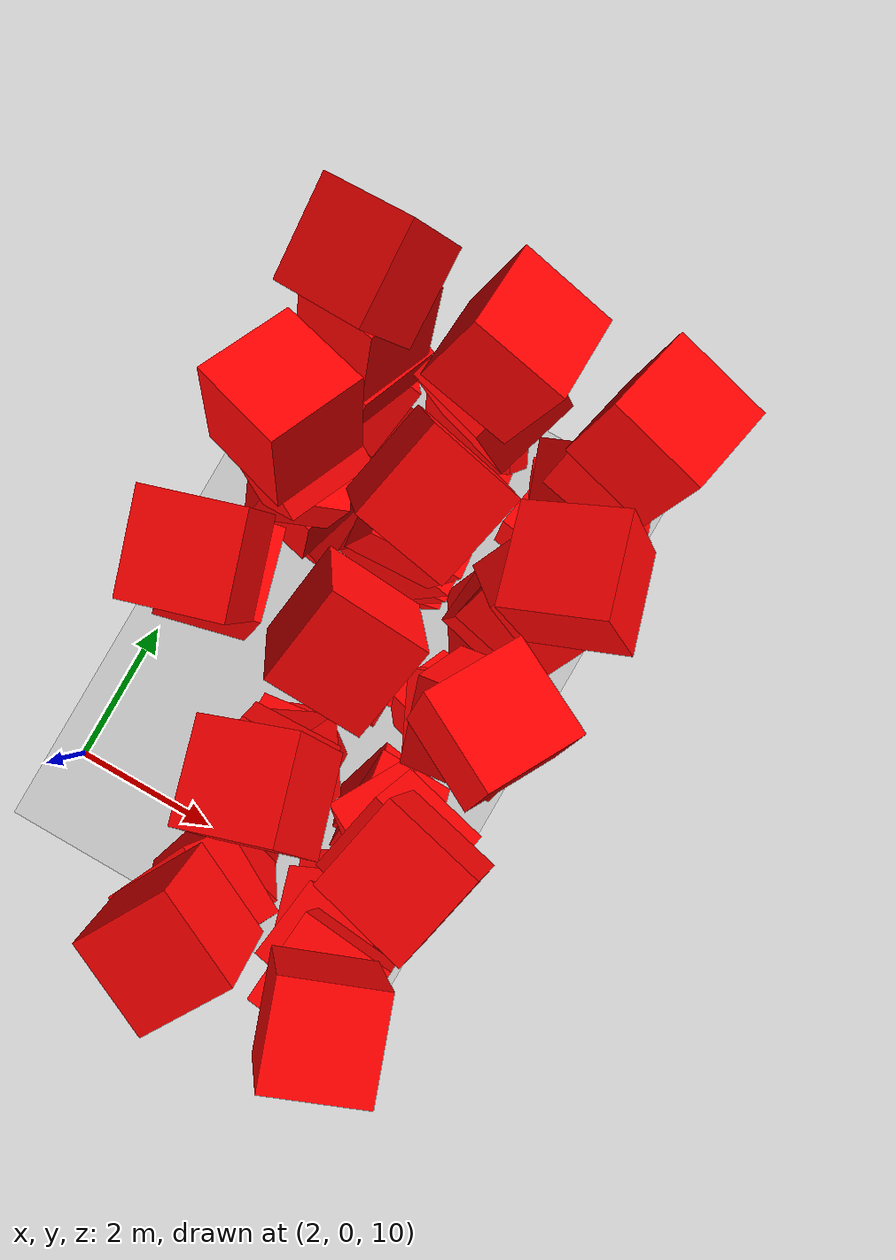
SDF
<sdf version="1.6">
 <world name="default">
  <model name="ground_plane">
   <pose>0 0 9  0 0 0</pose>
   <static>1</static>
   <link name="link">
    <collision name="collision">
     <geometry><plane><normal>0 0 1</normal><size>100 100</size></plane></geometry>
     <surface><bounce><restitution_coefficient>0</restitution_coefficient></bounce></surface>
    </collision>
    <visual name="visual">
     <geometry><plane><normal>0 0 1</normal><size>100 100</size></plane></geometry>
     <material>
      <ambient>0.8 0.8 0.8 1</ambient>
      <diffuse>0.8 0.8 0.8 1</diffuse>
      <specular>0.8 0.8 0.8 1</specular>
     </material>
    </visual>
   </link>
  </model>
  <model name="model_2_2_3">
   <pose>3 3 14.5 -0.198111 0.208371 0.246801</pose>
   <link name="box_link">
    <inertial>
     <inertia><ixx>1</ixx><ixy>0</ixy><ixz>0</ixz><iyy>1</iyy><iyz>0</iyz><izz>1</izz></inertia>
     <mass>6</mass>
    </inertial>
    <collision name="box_collision">
     <geometry><box><size>1 1 1</size></box></geometry>
     <surface><bounce><restitution_coefficient>0</restitution_coefficient></bounce></surface>
    </collision>
    <visual name="box_visual">
     <geometry><box><size>1 1 1</size></box></geometry>
     <material><ambient>1 0 0 1</ambient><diffuse>1 0 0 1</diffuse><specular>1 0 0 1</specular></material>
    </visual>
   </link>
  </model>
  <model name="model_2_2_4">
   <pose>3 3 16 0.117927 -0.129518 0.290726</pose>
   <link name="box_link">
    <inertial>
     <inertia><ixx>1</ixx><ixy>0</ixy><ixz>0</ixz><iyy>1</iyy><iyz>0</iyz><izz>1</izz></inertia>
     <mass>6</mass>
    </inertial>
    <collision name="box_collision">
     <geometry><box><size>1 1 1</size></box></geometry>
     <surface><bounce><restitution_coefficient>0</restitution_coefficient></bounce></surface>
    </collision>
    <visual name="box_visual">
     <geometry><box><size>1 1 1</size></box></geometry>
     <material><ambient>1 0 0 1</ambient><diffuse>1 0 0 1</diffuse><specular>1 0 0 1</specular></material>
    </visual>
   </link>
  </model>
  <model name="model_2_3_0">
   <pose>3 4.5 10 -0.025165 -0.414337 -0.152951</pose>
   <link name="box_link">
    <inertial>
     <inertia><ixx>1</ixx><ixy>0</ixy><ixz>0</ixz><iyy>1</iyy><iyz>0</iyz><izz>1</izz></inertia>
     <mass>6</mass>
    </inertial>
    <collision name="box_collision">
     <geometry><box><size>1 1 1</size></box></geometry>
     <surface><bounce><restitution_coefficient>0</restitution_coefficient></bounce></surface>
    </collision>
    <visual name="box_visual">
     <geometry><box><size>1 1 1</size></box></geometry>
     <material><ambient>1 0 0 1</ambient><diffuse>1 0 0 1</diffuse><specular>1 0 0 1</specular></material>
    </visual>
   </link>
  </model>
  <model name="model_2_3_1">
   <pose>3 4.5 11.5 -0.265623 -0.089924 -0.241491</pose>
   <link name="box_link">
    <inertial>
     <inertia><ixx>1</ixx><ixy>0</ixy><ixz>0</ixz><iyy>1</iyy><iyz>0</iyz><izz>1</izz></inertia>
     <mass>6</mass>
    </inertial>
    <collision name="box_collision">
     <geometry><box><size>1 1 1</size></box></geometry>
     <surface><bounce><restitution_coefficient>0</restitution_coefficient></bounce></surface>
    </collision>
    <visual name="box_visual">
     <geometry><box><size>1 1 1</size></box></geometry>
     <material><ambient>1 0 0 1</ambient><diffuse>1 0 0 1</diffuse><specular>1 0 0 1</specular></material>
    </visual>
   </link>
  </model>
  <model name="model_2_3_2">
   <pose>3 4.5 13 -0.090356 0.281294 0.422961</pose>
   <link name="box_link">
    <inertial>
     <inertia><ixx>1</ixx><ixy>0</ixy><ixz>0</ixz><iyy>1</iyy><iyz>0</iyz><izz>1</izz></inertia>
     <mass>6</mass>
    </inertial>
    <collision name="box_collision">
     <geometry><box><size>1 1 1</size></box></geometry>
     <surface><bounce><restitution_coefficient>0</restitution_coefficient></bounce></surface>
    </collision>
    <visual name="box_visual">
     <geometry><box><size>1 1 1</size></box></geometry>
     <material><ambient>1 0 0 1</ambient><diffuse>1 0 0 1</diffuse><specular>1 0 0 1</specular></material>
    </visual>
   </link>
  </model>
  <model name="model_2_3_3">
   <pose>3 4.5 14.5 -0.149042 0.477807 -0.477402</pose>
   <link name="box_link">
    <inertial>
     <inertia><ixx>1</ixx><ixy>0</ixy><ixz>0</ixz><iyy>1</iyy><iyz>0</iyz><izz>1</izz></inertia>
     <mass>6</mass>
    </inertial>
    <collision name="box_collision">
     <geometry><box><size>1 1 1</size></box></geometry>
     <surface><bounce><restitution_coefficient>0</restitution_coefficient></bounce></surface>
    </collision>
    <visual name="box_visual">
     <geometry><box><size>1 1 1</size></box></geometry>
     <material><ambient>1 0 0 1</ambient><diffuse>1 0 0 1</diffuse><specular>1 0 0 1</specular></material>
    </visual>
   </link>
  </model>
  <model name="model_2_3_4">
   <pose>3 4.5 16 -0.271486 -0.296293 -0.294881</pose>
   <link name="box_link">
    <inertial>
     <inertia><ixx>1</ixx><ixy>0</ixy><ixz>0</ixz><iyy>1</iyy><iyz>0</iyz><izz>1</izz></inertia>
     <mass>6</mass>
    </inertial>
    <collision name="box_collision">
     <geometry><box><size>1 1 1</size></box></geometry>
     <surface><bounce><restitution_coefficient>0</restitution_coefficient></bounce></surface>
    </collision>
    <visual name="box_visual">
     <geometry><box><size>1 1 1</size></box></geometry>
     <material><ambient>1 0 0 1</ambient><diffuse>1 0 0 1</diffuse><specular>1 0 0 1</specular></material>
    </visual>
   </link>
  </model>
  <model name="model_2_4_0">
   <pose>3 6 10 0.209347 -0.454872 -0.161305</pose>
   <link name="box_link">
    <inertial>
     <inertia><ixx>1</ixx><ixy>0</ixy><ixz>0</ixz><iyy>1</iyy><iyz>0</iyz><izz>1</izz></inertia>
     <mass>6</mass>
    </inertial>
    <collision name="box_collision">
     <geometry><box><size>1 1 1</size></box></geometry>
     <surface><bounce><restitution_coefficient>0</restitution_coefficient></bounce></surface>
    </collision>
    <visual name="box_visual">
     <geometry><box><size>1 1 1</size></box></geometry>
     <material><ambient>1 0 0 1</ambient><diffuse>1 0 0 1</diffuse><specular>1 0 0 1</specular></material>
    </visual>
   </link>
  </model>
  <model name="model_2_4_1">
   <pose>3 6 11.5 0.421568 0.2936 -0.053543</pose>
   <link name="box_link">
    <inertial>
     <inertia><ixx>1</ixx><ixy>0</ixy><ixz>0</ixz><iyy>1</iyy><iyz>0</iyz><izz>1</izz></inertia>
     <mass>6</mass>
    </inertial>
    <collision name="box_collision">
     <geometry><box><size>1 1 1</size></box></geometry>
     <surface><bounce><restitution_coefficient>0</restitution_coefficient></bounce></surface>
    </collision>
    <visual name="box_visual">
     <geometry><box><size>1 1 1</size></box></geometry>
     <material><ambient>1 0 0 1</ambient><diffuse>1 0 0 1</diffuse><specular>1 0 0 1</specular></material>
    </visual>
   </link>
  </model>
  <model name="model_2_4_2">
   <pose>3 6 13 -0.140526 0.038979 -0.362839</pose>
   <link name="box_link">
    <inertial>
     <inertia><ixx>1</ixx><ixy>0</ixy><ixz>0</ixz><iyy>1</iyy><iyz>0</iyz><izz>1</izz></inertia>
     <mass>6</mass>
    </inertial>
    <collision name="box_collision">
     <geometry><box><size>1 1 1</size></box></geometry>
     <surface><bounce><restitution_coefficient>0</restitution_coefficient></bounce></surface>
    </collision>
    <visual name="box_visual">
     <geometry><box><size>1 1 1</size></box></geometry>
     <material><ambient>1 0 0 1</ambient><diffuse>1 0 0 1</diffuse><specular>1 0 0 1</specular></material>
    </visual>
   </link>
  </model>
  <model name="model_2_4_3">
   <pose>3 6 14.5 -0.360287 -0.232538 -0.247077</pose>
   <link name="box_link">
    <inertial>
     <inertia><ixx>1</ixx><ixy>0</ixy><ixz>0</ixz><iyy>1</iyy><iyz>0</iyz><izz>1</izz></inertia>
     <mass>6</mass>
    </inertial>
    <collision name="box_collision">
     <geometry><box><size>1 1 1</size></box></geometry>
     <surface><bounce><restitution_coefficient>0</restitution_coefficient></bounce></surface>
    </collision>
    <visual name="box_visual">
     <geometry><box><size>1 1 1</size></box></geometry>
     <material><ambient>1 0 0 1</ambient><diffuse>1 0 0 1</diffuse><specular>1 0 0 1</specular></material>
    </visual>
   </link>
  </model>
  <model name="model_2_4_4">
   <pose>3 6 16 0.352831 -0.359817 -0.105282</pose>
   <link name="box_link">
    <inertial>
     <inertia><ixx>1</ixx><ixy>0</ixy><ixz>0</ixz><iyy>1</iyy><iyz>0</iyz><izz>1</izz></inertia>
     <mass>6</mass>
    </inertial>
    <collision name="box_collision">
     <geometry><box><size>1 1 1</size></box></geometry>
     <surface><bounce><restitution_coefficient>0</restitution_coefficient></bounce></surface>
    </collision>
    <visual name="box_visual">
     <geometry><box><size>1 1 1</size></box></geometry>
     <material><ambient>1 0 0 1</ambient><diffuse>1 0 0 1</diffuse><specular>1 0 0 1</specular></material>
    </visual>
   </link>
  </model>
  <model name="model_3_0_0">
   <pose>4.5 0 10 0.256834 -0.034594 0.128625</pose>
   <link name="box_link">
    <inertial>
     <inertia><ixx>1</ixx><ixy>0</ixy><ixz>0</ixz><iyy>1</iyy><iyz>0</iyz><izz>1</izz></inertia>
     <mass>6</mass>
    </inertial>
    <collision name="box_collision">
     <geometry><box><size>1 1 1</size></box></geometry>
     <surface><bounce><restitution_coefficient>0</restitution_coefficient></bounce></surface>
    </collision>
    <visual name="box_visual">
     <geometry><box><size>1 1 1</size></box></geometry>
     <material><ambient>1 0 0 1</ambient><diffuse>1 0 0 1</diffuse><specular>1 0 0 1</specular></material>
    </visual>
   </link>
  </model>
  <model name="model_3_0_1">
   <pose>4.5 0 11.5 -0.368741 -0.178572 0.320848</pose>
   <link name="box_link">
    <inertial>
     <inertia><ixx>1</ixx><ixy>0</ixy><ixz>0</ixz><iyy>1</iyy><iyz>0</iyz><izz>1</izz></inertia>
     <mass>6</mass>
    </inertial>
    <collision name="box_collision">
     <geometry><box><size>1 1 1</size></box></geometry>
     <surface><bounce><restitution_coefficient>0</restitution_coefficient></bounce></surface>
    </collision>
    <visual name="box_visual">
     <geometry><box><size>1 1 1</size></box></geometry>
     <material><ambient>1 0 0 1</ambient><diffuse>1 0 0 1</diffuse><specular>1 0 0 1</specular></material>
    </visual>
   </link>
  </model>
  <model name="model_3_0_2">
   <pose>4.5 0 13 0.134633 0.272501 -0.276824</pose>
   <link name="box_link">
    <inertial>
     <inertia><ixx>1</ixx><ixy>0</ixy><ixz>0</ixz><iyy>1</iyy><iyz>0</iyz><izz>1</izz></inertia>
     <mass>6</mass>
    </inertial>
    <collision name="box_collision">
     <geometry><box><size>1 1 1</size></box></geometry>
     <surface><bounce><restitution_coefficient>0</restitution_coefficient></bounce></surface>
    </collision>
    <visual name="box_visual">
     <geometry><box><size>1 1 1</size></box></geometry>
     <material><ambient>1 0 0 1</ambient><diffuse>1 0 0 1</diffuse><specular>1 0 0 1</specular></material>
    </visual>
   </link>
  </model>
  <model name="model_3_0_3">
   <pose>4.5 0 14.5 0.326208 -0.136151 -0.48375</pose>
   <link name="box_link">
    <inertial>
     <inertia><ixx>1</ixx><ixy>0</ixy><ixz>0</ixz><iyy>1</iyy><iyz>0</iyz><izz>1</izz></inertia>
     <mass>6</mass>
    </inertial>
    <collision name="box_collision">
     <geometry><box><size>1 1 1</size></box></geometry>
     <surface><bounce><restitution_coefficient>0</restitution_coefficient></bounce></surface>
    </collision>
    <visual name="box_visual">
     <geometry><box><size>1 1 1</size></box></geometry>
     <material><ambient>1 0 0 1</ambient><diffuse>1 0 0 1</diffuse><specular>1 0 0 1</specular></material>
    </visual>
   </link>
  </model>
  <model name="model_3_0_4">
   <pose>4.5 0 16 0.300434 0.129007 -0.460473</pose>
   <link name="box_link">
    <inertial>
     <inertia><ixx>1</ixx><ixy>0</ixy><ixz>0</ixz><iyy>1</iyy><iyz>0</iyz><izz>1</izz></inertia>
     <mass>6</mass>
    </inertial>
    <collision name="box_collision">
     <geometry><box><size>1 1 1</size></box></geometry>
     <surface><bounce><restitution_coefficient>0</restitution_coefficient></bounce></surface>
    </collision>
    <visual name="box_visual">
     <geometry><box><size>1 1 1</size></box></geometry>
     <material><ambient>1 0 0 1</ambient><diffuse>1 0 0 1</diffuse><specular>1 0 0 1</specular></material>
    </visual>
   </link>
  </model>
  <model name="model_3_1_0">
   <pose>4.5 1.5 10 0.366286 -0.060726 0.37611</pose>
   <link name="box_link">
    <inertial>
     <inertia><ixx>1</ixx><ixy>0</ixy><ixz>0</ixz><iyy>1</iyy><iyz>0</iyz><izz>1</izz></inertia>
     <mass>6</mass>
    </inertial>
    <collision name="box_collision">
     <geometry><box><size>1 1 1</size></box></geometry>
     <surface><bounce><restitution_coefficient>0</restitution_coefficient></bounce></surface>
    </collision>
    <visual name="box_visual">
     <geometry><box><size>1 1 1</size></box></geometry>
     <material><ambient>1 0 0 1</ambient><diffuse>1 0 0 1</diffuse><specular>1 0 0 1</specular></material>
    </visual>
   </link>
  </model>
  <model name="model_3_1_1">
   <pose>4.5 1.5 11.5 -0.365435 -0.353961 0.142329</pose>
   <link name="box_link">
    <inertial>
     <inertia><ixx>1</ixx><ixy>0</ixy><ixz>0</ixz><iyy>1</iyy><iyz>0</iyz><izz>1</izz></inertia>
     <mass>6</mass>
    </inertial>
    <collision name="box_collision">
     <geometry><box><size>1 1 1</size></box></geometry>
     <surface><bounce><restitution_coefficient>0</restitution_coefficient></bounce></surface>
    </collision>
    <visual name="box_visual">
     <geometry><box><size>1 1 1</size></box></geometry>
     <material><ambient>1 0 0 1</ambient><diffuse>1 0 0 1</diffuse><specular>1 0 0 1</specular></material>
    </visual>
   </link>
  </model>
  <model name="model_3_1_2">
   <pose>4.5 1.5 13 0.286396 -0.404559 0.466458</pose>
   <link name="box_link">
    <inertial>
     <inertia><ixx>1</ixx><ixy>0</ixy><ixz>0</ixz><iyy>1</iyy><iyz>0</iyz><izz>1</izz></inertia>
     <mass>6</mass>
    </inertial>
    <collision name="box_collision">
     <geometry><box><size>1 1 1</size></box></geometry>
     <surface><bounce><restitution_coefficient>0</restitution_coefficient></bounce></surface>
    </collision>
    <visual name="box_visual">
     <geometry><box><size>1 1 1</size></box></geometry>
     <material><ambient>1 0 0 1</ambient><diffuse>1 0 0 1</diffuse><specular>1 0 0 1</specular></material>
    </visual>
   </link>
  </model>
  <model name="model_3_1_3">
   <pose>4.5 1.5 14.5 0.13676 0.01454 0.038511</pose>
   <link name="box_link">
    <inertial>
     <inertia><ixx>1</ixx><ixy>0</ixy><ixz>0</ixz><iyy>1</iyy><iyz>0</iyz><izz>1</izz></inertia>
     <mass>6</mass>
    </inertial>
    <collision name="box_collision">
     <geometry><box><size>1 1 1</size></box></geometry>
     <surface><bounce><restitution_coefficient>0</restitution_coefficient></bounce></surface>
    </collision>
    <visual name="box_visual">
     <geometry><box><size>1 1 1</size></box></geometry>
     <material><ambient>1 0 0 1</ambient><diffuse>1 0 0 1</diffuse><specular>1 0 0 1</specular></material>
    </visual>
   </link>
  </model>
  <model name="model_3_1_4">
   <pose>4.5 1.5 16 -0.182151 -0.385042 0.36934</pose>
   <link name="box_link">
    <inertial>
     <inertia><ixx>1</ixx><ixy>0</ixy><ixz>0</ixz><iyy>1</iyy><iyz>0</iyz><izz>1</izz></inertia>
     <mass>6</mass>
    </inertial>
    <collision name="box_collision">
     <geometry><box><size>1 1 1</size></box></geometry>
     <surface><bounce><restitution_coefficient>0</restitution_coefficient></bounce></surface>
    </collision>
    <visual name="box_visual">
     <geometry><box><size>1 1 1</size></box></geometry>
     <material><ambient>1 0 0 1</ambient><diffuse>1 0 0 1</diffuse><specular>1 0 0 1</specular></material>
    </visual>
   </link>
  </model>
  <model name="model_3_2_0">
   <pose>4.5 3 10 0.348288 0.124407 0.003398</pose>
   <link name="box_link">
    <inertial>
     <inertia><ixx>1</ixx><ixy>0</ixy><ixz>0</ixz><iyy>1</iyy><iyz>0</iyz><izz>1</izz></inertia>
     <mass>6</mass>
    </inertial>
    <collision name="box_collision">
     <geometry><box><size>1 1 1</size></box></geometry>
     <surface><bounce><restitution_coefficient>0</restitution_coefficient></bounce></surface>
    </collision>
    <visual name="box_visual">
     <geometry><box><size>1 1 1</size></box></geometry>
     <material><ambient>1 0 0 1</ambient><diffuse>1 0 0 1</diffuse><specular>1 0 0 1</specular></material>
    </visual>
   </link>
  </model>
  <model name="model_3_2_1">
   <pose>4.5 3 11.5 -0.196137 -0.394392 0.280725</pose>
   <link name="box_link">
    <inertial>
     <inertia><ixx>1</ixx><ixy>0</ixy><ixz>0</ixz><iyy>1</iyy><iyz>0</iyz><izz>1</izz></inertia>
     <mass>6</mass>
    </inertial>
    <collision name="box_collision">
     <geometry><box><size>1 1 1</size></box></geometry>
     <surface><bounce><restitution_coefficient>0</restitution_coefficient></bounce></surface>
    </collision>
    <visual name="box_visual">
     <geometry><box><size>1 1 1</size></box></geometry>
     <material><ambient>1 0 0 1</ambient><diffuse>1 0 0 1</diffuse><specular>1 0 0 1</specular></material>
    </visual>
   </link>
  </model>
  <model name="model_3_2_2">
   <pose>4.5 3 13 0.119314 0.202347 0.386309</pose>
   <link name="box_link">
    <inertial>
     <inertia><ixx>1</ixx><ixy>0</ixy><ixz>0</ixz><iyy>1</iyy><iyz>0</iyz><izz>1</izz></inertia>
     <mass>6</mass>
    </inertial>
    <collision name="box_collision">
     <geometry><box><size>1 1 1</size></box></geometry>
     <surface><bounce><restitution_coefficient>0</restitution_coefficient></bounce></surface>
    </collision>
    <visual name="box_visual">
     <geometry><box><size>1 1 1</size></box></geometry>
     <material><ambient>1 0 0 1</ambient><diffuse>1 0 0 1</diffuse><specular>1 0 0 1</specular></material>
    </visual>
   </link>
  </model>
  <model name="model_3_2_3">
   <pose>4.5 3 14.5 -0.358587 -0.423911 0.12514</pose>
   <link name="box_link">
    <inertial>
     <inertia><ixx>1</ixx><ixy>0</ixy><ixz>0</ixz><iyy>1</iyy><iyz>0</iyz><izz>1</izz></inertia>
     <mass>6</mass>
    </inertial>
    <collision name="box_collision">
     <geometry><box><size>1 1 1</size></box></geometry>
     <surface><bounce><restitution_coefficient>0</restitution_coefficient></bounce></surface>
    </collision>
    <visual name="box_visual">
     <geometry><box><size>1 1 1</size></box></geometry>
     <material><ambient>1 0 0 1</ambient><diffuse>1 0 0 1</diffuse><specular>1 0 0 1</specular></material>
    </visual>
   </link>
  </model>
  <model name="model_3_2_4">
   <pose>4.5 3 16 0.392171 0.310731 -0.030338</pose>
   <link name="box_link">
    <inertial>
     <inertia><ixx>1</ixx><ixy>0</ixy><ixz>0</ixz><iyy>1</iyy><iyz>0</iyz><izz>1</izz></inertia>
     <mass>6</mass>
    </inertial>
    <collision name="box_collision">
     <geometry><box><size>1 1 1</size></box></geometry>
     <surface><bounce><restitution_coefficient>0</restitution_coefficient></bounce></surface>
    </collision>
    <visual name="box_visual">
     <geometry><box><size>1 1 1</size></box></geometry>
     <material><ambient>1 0 0 1</ambient><diffuse>1 0 0 1</diffuse><specular>1 0 0 1</specular></material>
    </visual>
   </link>
  </model>
  <model name="model_3_3_0">
   <pose>4.5 4.5 10 -0.031809 0.411893 0.243838</pose>
   <link name="box_link">
    <inertial>
     <inertia><ixx>1</ixx><ixy>0</ixy><ixz>0</ixz><iyy>1</iyy><iyz>0</iyz><izz>1</izz></inertia>
     <mass>6</mass>
    </inertial>
    <collision name="box_collision">
     <geometry><box><size>1 1 1</size></box></geometry>
     <surface><bounce><restitution_coefficient>0</restitution_coefficient></bounce></surface>
    </collision>
    <visual name="box_visual">
     <geometry><box><size>1 1 1</size></box></geometry>
     <material><ambient>1 0 0 1</ambient><diffuse>1 0 0 1</diffuse><specular>1 0 0 1</specular></material>
    </visual>
   </link>
  </model>
  <model name="model_3_3_1">
   <pose>4.5 4.5 11.5 -0.118548 0.415118 0.142056</pose>
   <link name="box_link">
    <inertial>
     <inertia><ixx>1</ixx><ixy>0</ixy><ixz>0</ixz><iyy>1</iyy><iyz>0</iyz><izz>1</izz></inertia>
     <mass>6</mass>
    </inertial>
    <collision name="box_collision">
     <geometry><box><size>1 1 1</size></box></geometry>
     <surface><bounce><restitution_coefficient>0</restitution_coefficient></bounce></surface>
    </collision>
    <visual name="box_visual">
     <geometry><box><size>1 1 1</size></box></geometry>
     <material><ambient>1 0 0 1</ambient><diffuse>1 0 0 1</diffuse><specular>1 0 0 1</specular></material>
    </visual>
   </link>
  </model>
  <model name="model_3_3_2">
   <pose>4.5 4.5 13 -0.287036 0.421215 -0.124086</pose>
   <link name="box_link">
    <inertial>
     <inertia><ixx>1</ixx><ixy>0</ixy><ixz>0</ixz><iyy>1</iyy><iyz>0</iyz><izz>1</izz></inertia>
     <mass>6</mass>
    </inertial>
    <collision name="box_collision">
     <geometry><box><size>1 1 1</size></box></geometry>
     <surface><bounce><restitution_coefficient>0</restitution_coefficient></bounce></surface>
    </collision>
    <visual name="box_visual">
     <geometry><box><size>1 1 1</size></box></geometry>
     <material><ambient>1 0 0 1</ambient><diffuse>1 0 0 1</diffuse><specular>1 0 0 1</specular></material>
    </visual>
   </link>
  </model>
  <model name="model_3_3_3">
   <pose>4.5 4.5 14.5 -0.126018 0.241975 0.079496</pose>
   <link name="box_link">
    <inertial>
     <inertia><ixx>1</ixx><ixy>0</ixy><ixz>0</ixz><iyy>1</iyy><iyz>0</iyz><izz>1</izz></inertia>
     <mass>6</mass>
    </inertial>
    <collision name="box_collision">
     <geometry><box><size>1 1 1</size></box></geometry>
     <surface><bounce><restitution_coefficient>0</restitution_coefficient></bounce></surface>
    </collision>
    <visual name="box_visual">
     <geometry><box><size>1 1 1</size></box></geometry>
     <material><ambient>1 0 0 1</ambient><diffuse>1 0 0 1</diffuse><specular>1 0 0 1</specular></material>
    </visual>
   </link>
  </model>
  <model name="model_3_3_4">
   <pose>4.5 4.5 16 0.25064 0.309336 -0.132233</pose>
   <link name="box_link">
    <inertial>
     <inertia><ixx>1</ixx><ixy>0</ixy><ixz>0</ixz><iyy>1</iyy><iyz>0</iyz><izz>1</izz></inertia>
     <mass>6</mass>
    </inertial>
    <collision name="box_collision">
     <geometry><box><size>1 1 1</size></box></geometry>
     <surface><bounce><restitution_coefficient>0</restitution_coefficient></bounce></surface>
    </collision>
    <visual name="box_visual">
     <geometry><box><size>1 1 1</size></box></geometry>
     <material><ambient>1 0 0 1</ambient><diffuse>1 0 0 1</diffuse><specular>1 0 0 1</specular></material>
    </visual>
   </link>
  </model>
  <model name="model_3_4_0">
   <pose>4.5 6 10 -0.369966 -0.384804 -0.313937</pose>
   <link name="box_link">
    <inertial>
     <inertia><ixx>1</ixx><ixy>0</ixy><ixz>0</ixz><iyy>1</iyy><iyz>0</iyz><izz>1</izz></inertia>
     <mass>6</mass>
    </inertial>
    <collision name="box_collision">
     <geometry><box><size>1 1 1</size></box></geometry>
     <surface><bounce><restitution_coefficient>0</restitution_coefficient></bounce></surface>
    </collision>
    <visual name="box_visual">
     <geometry><box><size>1 1 1</size></box></geometry>
     <material><ambient>1 0 0 1</ambient><diffuse>1 0 0 1</diffuse><specular>1 0 0 1</specular></material>
    </visual>
   </link>
  </model>
  <model name="model_3_4_1">
   <pose>4.5 6 11.5 0.012061 0.353673 0.142476</pose>
   <link name="box_link">
    <inertial>
     <inertia><ixx>1</ixx><ixy>0</ixy><ixz>0</ixz><iyy>1</iyy><iyz>0</iyz><izz>1</izz></inertia>
     <mass>6</mass>
    </inertial>
    <collision name="box_collision">
     <geometry><box><size>1 1 1</size></box></geometry>
     <surface><bounce><restitution_coefficient>0</restitution_coefficient></bounce></surface>
    </collision>
    <visual name="box_visual">
     <geometry><box><size>1 1 1</size></box></geometry>
     <material><ambient>1 0 0 1</ambient><diffuse>1 0 0 1</diffuse><specular>1 0 0 1</specular></material>
    </visual>
   </link>
  </model>
  <model name="model_3_4_2">
   <pose>4.5 6 13 0.287963 -0.308405 0.391526</pose>
   <link name="box_link">
    <inertial>
     <inertia><ixx>1</ixx><ixy>0</ixy><ixz>0</ixz><iyy>1</iyy><iyz>0</iyz><izz>1</izz></inertia>
     <mass>6</mass>
    </inertial>
    <collision name="box_collision">
     <geometry><box><size>1 1 1</size></box></geometry>
     <surface><bounce><restitution_coefficient>0</restitution_coefficient></bounce></surface>
    </collision>
    <visual name="box_visual">
     <geometry><box><size>1 1 1</size></box></geometry>
     <material><ambient>1 0 0 1</ambient><diffuse>1 0 0 1</diffuse><specular>1 0 0 1</specular></material>
    </visual>
   </link>
  </model>
  <model name="model_3_4_3">
   <pose>4.5 6 14.5 0.167026 -0.382644 -0.360348</pose>
   <link name="box_link">
    <inertial>
     <inertia><ixx>1</ixx><ixy>0</ixy><ixz>0</ixz><iyy>1</iyy><iyz>0</iyz><izz>1</izz></inertia>
     <mass>6</mass>
    </inertial>
    <collision name="box_collision">
     <geometry><box><size>1 1 1</size></box></geometry>
     <surface><bounce><restitution_coefficient>0</restitution_coefficient></bounce></surface>
    </collision>
    <visual name="box_visual">
     <geometry><box><size>1 1 1</size></box></geometry>
     <material><ambient>1 0 0 1</ambient><diffuse>1 0 0 1</diffuse><specular>1 0 0 1</specular></material>
    </visual>
   </link>
  </model>
  <model name="model_3_4_4">
   <pose>4.5 6 16 -0.399509 0.223433 -0.117832</pose>
   <link name="box_link">
    <inertial>
     <inertia><ixx>1</ixx><ixy>0</ixy><ixz>0</ixz><iyy>1</iyy><iyz>0</iyz><izz>1</izz></inertia>
     <mass>6</mass>
    </inertial>
    <collision name="box_collision">
     <geometry><box><size>1 1 1</size></box></geometry>
     <surface><bounce><restitution_coefficient>0</restitution_coefficient></bounce></surface>
    </collision>
    <visual name="box_visual">
     <geometry><box><size>1 1 1</size></box></geometry>
     <material><ambient>1 0 0 1</ambient><diffuse>1 0 0 1</diffuse><specular>1 0 0 1</specular></material>
    </visual>
   </link>
  </model>
  <model name="model_4_0_0">
   <pose>6 0 10 0.275329 0.034203 0.459849</pose>
   <link name="box_link">
    <inertial>
     <inertia><ixx>1</ixx><ixy>0</ixy><ixz>0</ixz><iyy>1</iyy><iyz>0</iyz><izz>1</izz></inertia>
     <mass>6</mass>
    </inertial>
    <collision name="box_collision">
     <geometry><box><size>1 1 1</size></box></geometry>
     <surface><bounce><restitution_coefficient>0</restitution_coefficient></bounce></surface>
    </collision>
    <visual name="box_visual">
     <geometry><box><size>1 1 1</size></box></geometry>
     <material><ambient>1 0 0 1</ambient><diffuse>1 0 0 1</diffuse><specular>1 0 0 1</specular></material>
    </visual>
   </link>
  </model>
  <model name="model_4_0_1">
   <pose>6 0 11.5 -0.479344 -0.384472 0.496045</pose>
   <link name="box_link">
    <inertial>
     <inertia><ixx>1</ixx><ixy>0</ixy><ixz>0</ixz><iyy>1</iyy><iyz>0</iyz><izz>1</izz></inertia>
     <mass>6</mass>
    </inertial>
    <collision name="box_collision">
     <geometry><box><size>1 1 1</size></box></geometry>
     <surface><bounce><restitution_coefficient>0</restitution_coefficient></bounce></surface>
    </collision>
    <visual name="box_visual">
     <geometry><box><size>1 1 1</size></box></geometry>
     <material><ambient>1 0 0 1</ambient><diffuse>1 0 0 1</diffuse><specular>1 0 0 1</specular></material>
    </visual>
   </link>
  </model>
  <model name="model_4_0_2">
   <pose>6 0 13 -0.059376 -0.336423 -0.107769</pose>
   <link name="box_link">
    <inertial>
     <inertia><ixx>1</ixx><ixy>0</ixy><ixz>0</ixz><iyy>1</iyy><iyz>0</iyz><izz>1</izz></inertia>
     <mass>6</mass>
    </inertial>
    <collision name="box_collision">
     <geometry><box><size>1 1 1</size></box></geometry>
     <surface><bounce><restitution_coefficient>0</restitution_coefficient></bounce></surface>
    </collision>
    <visual name="box_visual">
     <geometry><box><size>1 1 1</size></box></geometry>
     <material><ambient>1 0 0 1</ambient><diffuse>1 0 0 1</diffuse><specular>1 0 0 1</specular></material>
    </visual>
   </link>
  </model>
  <model name="model_4_0_3">
   <pose>6 0 14.5 -0.075613 -0.157664 -0.061889</pose>
   <link name="box_link">
    <inertial>
     <inertia><ixx>1</ixx><ixy>0</ixy><ixz>0</ixz><iyy>1</iyy><iyz>0</iyz><izz>1</izz></inertia>
     <mass>6</mass>
    </inertial>
    <collision name="box_collision">
     <geometry><box><size>1 1 1</size></box></geometry>
     <surface><bounce><restitution_coefficient>0</restitution_coefficient></bounce></surface>
    </collision>
    <visual name="box_visual">
     <geometry><box><size>1 1 1</size></box></geometry>
     <material><ambient>1 0 0 1</ambient><diffuse>1 0 0 1</diffuse><specular>1 0 0 1</specular></material>
    </visual>
   </link>
  </model>
  <model name="model_4_0_4">
   <pose>6 0 16 0.002587 0.11586 0.348491</pose>
   <link name="box_link">
    <inertial>
     <inertia><ixx>1</ixx><ixy>0</ixy><ixz>0</ixz><iyy>1</iyy><iyz>0</iyz><izz>1</izz></inertia>
     <mass>6</mass>
    </inertial>
    <collision name="box_collision">
     <geometry><box><size>1 1 1</size></box></geometry>
     <surface><bounce><restitution_coefficient>0</restitution_coefficient></bounce></surface>
    </collision>
    <visual name="box_visual">
     <geometry><box><size>1 1 1</size></box></geometry>
     <material><ambient>1 0 0 1</ambient><diffuse>1 0 0 1</diffuse><specular>1 0 0 1</specular></material>
    </visual>
   </link>
  </model>
  <model name="model_4_1_0">
   <pose>6 1.5 10 0.471153 0.248088 -0.14744</pose>
   <link name="box_link">
    <inertial>
     <inertia><ixx>1</ixx><ixy>0</ixy><ixz>0</ixz><iyy>1</iyy><iyz>0</iyz><izz>1</izz></inertia>
     <mass>6</mass>
    </inertial>
    <collision name="box_collision">
     <geometry><box><size>1 1 1</size></box></geometry>
     <surface><bounce><restitution_coefficient>0</restitution_coefficient></bounce></surface>
    </collision>
    <visual name="box_visual">
     <geometry><box><size>1 1 1</size></box></geometry>
     <material><ambient>1 0 0 1</ambient><diffuse>1 0 0 1</diffuse><specular>1 0 0 1</specular></material>
    </visual>
   </link>
  </model>
  <model name="model_4_1_1">
   <pose>6 1.5 11.5 0.480398 0.035775 -0.01633</pose>
   <link name="box_link">
    <inertial>
     <inertia><ixx>1</ixx><ixy>0</ixy><ixz>0</ixz><iyy>1</iyy><iyz>0</iyz><izz>1</izz></inertia>
     <mass>6</mass>
    </inertial>
    <collision name="box_collision">
     <geometry><box><size>1 1 1</size></box></geometry>
     <surface><bounce><restitution_coefficient>0</restitution_coefficient></bounce></surface>
    </collision>
    <visual name="box_visual">
     <geometry><box><size>1 1 1</size></box></geometry>
     <material><ambient>1 0 0 1</ambient><diffuse>1 0 0 1</diffuse><specular>1 0 0 1</specular></material>
    </visual>
   </link>
  </model>
  <model name="model_4_1_2">
   <pose>6 1.5 13 -0.136529 -0.444515 -0.456755</pose>
   <link name="box_link">
    <inertial>
     <inertia><ixx>1</ixx><ixy>0</ixy><ixz>0</ixz><iyy>1</iyy><iyz>0</iyz><izz>1</izz></inertia>
     <mass>6</mass>
    </inertial>
    <collision name="box_collision">
     <geometry><box><size>1 1 1</size></box></geometry>
     <surface><bounce><restitution_coefficient>0</restitution_coefficient></bounce></surface>
    </collision>
    <visual name="box_visual">
     <geometry><box><size>1 1 1</size></box></geometry>
     <material><ambient>1 0 0 1</ambient><diffuse>1 0 0 1</diffuse><specular>1 0 0 1</specular></material>
    </visual>
   </link>
  </model>
  <model name="model_4_1_3">
   <pose>6 1.5 14.5 0.419368 -0.14412 -0.233303</pose>
   <link name="box_link">
    <inertial>
     <inertia><ixx>1</ixx><ixy>0</ixy><ixz>0</ixz><iyy>1</iyy><iyz>0</iyz><izz>1</izz></inertia>
     <mass>6</mass>
    </inertial>
    <collision name="box_collision">
     <geometry><box><size>1 1 1</size></box></geometry>
     <surface><bounce><restitution_coefficient>0</restitution_coefficient></bounce></surface>
    </collision>
    <visual name="box_visual">
     <geometry><box><size>1 1 1</size></box></geometry>
     <material><ambient>1 0 0 1</ambient><diffuse>1 0 0 1</diffuse><specular>1 0 0 1</specular></material>
    </visual>
   </link>
  </model>
  <model name="model_4_1_4">
   <pose>6 1.5 16 0.15551 -0.198368 -0.217078</pose>
   <link name="box_link">
    <inertial>
     <inertia><ixx>1</ixx><ixy>0</ixy><ixz>0</ixz><iyy>1</iyy><iyz>0</iyz><izz>1</izz></inertia>
     <mass>6</mass>
    </inertial>
    <collision name="box_collision">
     <geometry><box><size>1 1 1</size></box></geometry>
     <surface><bounce><restitution_coefficient>0</restitution_coefficient></bounce></surface>
    </collision>
    <visual name="box_visual">
     <geometry><box><size>1 1 1</size></box></geometry>
     <material><ambient>1 0 0 1</ambient><diffuse>1 0 0 1</diffuse><specular>1 0 0 1</specular></material>
    </visual>
   </link>
  </model>
  <model name="model_4_2_0">
   <pose>6 3 10 -0.285784 -0.480985 -0.285326</pose>
   <link name="box_link">
    <inertial>
     <inertia><ixx>1</ixx><ixy>0</ixy><ixz>0</ixz><iyy>1</iyy><iyz>0</iyz><izz>1</izz></inertia>
     <mass>6</mass>
    </inertial>
    <collision name="box_collision">
     <geometry><box><size>1 1 1</size></box></geometry>
     <surface><bounce><restitution_coefficient>0</restitution_coefficient></bounce></surface>
    </collision>
    <visual name="box_visual">
     <geometry><box><size>1 1 1</size></box></geometry>
     <material><ambient>1 0 0 1</ambient><diffuse>1 0 0 1</diffuse><specular>1 0 0 1</specular></material>
    </visual>
   </link>
  </model>
  <model name="model_4_2_1">
   <pose>6 3 11.5 -0.107139 -0.175475 0.438333</pose>
   <link name="box_link">
    <inertial>
     <inertia><ixx>1</ixx><ixy>0</ixy><ixz>0</ixz><iyy>1</iyy><iyz>0</iyz><izz>1</izz></inertia>
     <mass>6</mass>
    </inertial>
    <collision name="box_collision">
     <geometry><box><size>1 1 1</size></box></geometry>
     <surface><bounce><restitution_coefficient>0</restitution_coefficient></bounce></surface>
    </collision>
    <visual name="box_visual">
     <geometry><box><size>1 1 1</size></box></geometry>
     <material><ambient>1 0 0 1</ambient><diffuse>1 0 0 1</diffuse><specular>1 0 0 1</specular></material>
    </visual>
   </link>
  </model>
  <model name="model_4_2_2">
   <pose>6 3 13 -0.005922 -0.397777 0.453229</pose>
   <link name="box_link">
    <inertial>
     <inertia><ixx>1</ixx><ixy>0</ixy><ixz>0</ixz><iyy>1</iyy><iyz>0</iyz><izz>1</izz></inertia>
     <mass>6</mass>
    </inertial>
    <collision name="box_collision">
     <geometry><box><size>1 1 1</size></box></geometry>
     <surface><bounce><restitution_coefficient>0</restitution_coefficient></bounce></surface>
    </collision>
    <visual name="box_visual">
     <geometry><box><size>1 1 1</size></box></geometry>
     <material><ambient>1 0 0 1</ambient><diffuse>1 0 0 1</diffuse><specular>1 0 0 1</specular></material>
    </visual>
   </link>
  </model>
  <model name="model_4_2_3">
   <pose>6 3 14.5 0.49633 -0.388825 0.132988</pose>
   <link name="box_link">
    <inertial>
     <inertia><ixx>1</ixx><ixy>0</ixy><ixz>0</ixz><iyy>1</iyy><iyz>0</iyz><izz>1</izz></inertia>
     <mass>6</mass>
    </inertial>
    <collision name="box_collision">
     <geometry><box><size>1 1 1</size></box></geometry>
     <surface><bounce><restitution_coefficient>0</restitution_coefficient></bounce></surface>
    </collision>
    <visual name="box_visual">
     <geometry><box><size>1 1 1</size></box></geometry>
     <material><ambient>1 0 0 1</ambient><diffuse>1 0 0 1</diffuse><specular>1 0 0 1</specular></material>
    </visual>
   </link>
  </model>
  <model name="model_4_2_4">
   <pose>6 3 16 -0.221099 -0.167393 -0.490146</pose>
   <link name="box_link">
    <inertial>
     <inertia><ixx>1</ixx><ixy>0</ixy><ixz>0</ixz><iyy>1</iyy><iyz>0</iyz><izz>1</izz></inertia>
     <mass>6</mass>
    </inertial>
    <collision name="box_collision">
     <geometry><box><size>1 1 1</size></box></geometry>
     <surface><bounce><restitution_coefficient>0</restitution_coefficient></bounce></surface>
    </collision>
    <visual name="box_visual">
     <geometry><box><size>1 1 1</size></box></geometry>
     <material><ambient>1 0 0 1</ambient><diffuse>1 0 0 1</diffuse><specular>1 0 0 1</specular></material>
    </visual>
   </link>
  </model>
  <model name="model_4_3_0">
   <pose>6 4.5 10 -0.248724 0.320639 0.450968</pose>
   <link name="box_link">
    <inertial>
     <inertia><ixx>1</ixx><ixy>0</ixy><ixz>0</ixz><iyy>1</iyy><iyz>0</iyz><izz>1</izz></inertia>
     <mass>6</mass>
    </inertial>
    <collision name="box_collision">
     <geometry><box><size>1 1 1</size></box></geometry>
     <surface><bounce><restitution_coefficient>0</restitution_coefficient></bounce></surface>
    </collision>
    <visual name="box_visual">
     <geometry><box><size>1 1 1</size></box></geometry>
     <material><ambient>1 0 0 1</ambient><diffuse>1 0 0 1</diffuse><specular>1 0 0 1</specular></material>
    </visual>
   </link>
  </model>
  <model name="model_4_3_1">
   <pose>6 4.5 11.5 -0.343904 0.312495 -0.206604</pose>
   <link name="box_link">
    <inertial>
     <inertia><ixx>1</ixx><ixy>0</ixy><ixz>0</ixz><iyy>1</iyy><iyz>0</iyz><izz>1</izz></inertia>
     <mass>6</mass>
    </inertial>
    <collision name="box_collision">
     <geometry><box><size>1 1 1</size></box></geometry>
     <surface><bounce><restitution_coefficient>0</restitution_coefficient></bounce></surface>
    </collision>
    <visual name="box_visual">
     <geometry><box><size>1 1 1</size></box></geometry>
     <material><ambient>1 0 0 1</ambient><diffuse>1 0 0 1</diffuse><specular>1 0 0 1</specular></material>
    </visual>
   </link>
  </model>
  <model name="model_4_3_2">
   <pose>6 4.5 13 -0.312696 0.004898 -0.210207</pose>
   <link name="box_link">
    <inertial>
     <inertia><ixx>1</ixx><ixy>0</ixy><ixz>0</ixz><iyy>1</iyy><iyz>0</iyz><izz>1</izz></inertia>
     <mass>6</mass>
    </inertial>
    <collision name="box_collision">
     <geometry><box><size>1 1 1</size></box></geometry>
     <surface><bounce><restitution_coefficient>0</restitution_coefficient></bounce></surface>
    </collision>
    <visual name="box_visual">
     <geometry><box><size>1 1 1</size></box></geometry>
     <material><ambient>1 0 0 1</ambient><diffuse>1 0 0 1</diffuse><specular>1 0 0 1</specular></material>
    </visual>
   </link>
  </model>
  <model name="model_4_3_3">
   <pose>6 4.5 14.5 0.27778 0.454977 -0.313935</pose>
   <link name="box_link">
    <inertial>
     <inertia><ixx>1</ixx><ixy>0</ixy><ixz>0</ixz><iyy>1</iyy><iyz>0</iyz><izz>1</izz></inertia>
     <mass>6</mass>
    </inertial>
    <collision name="box_collision">
     <geometry><box><size>1 1 1</size></box></geometry>
     <surface><bounce><restitution_coefficient>0</restitution_coefficient></bounce></surface>
    </collision>
    <visual name="box_visual">
     <geometry><box><size>1 1 1</size></box></geometry>
     <material><ambient>1 0 0 1</ambient><diffuse>1 0 0 1</diffuse><specular>1 0 0 1</specular></material>
    </visual>
   </link>
  </model>
  <model name="model_4_3_4">
   <pose>6 4.5 16 -0.195831 -0.468746 0.35285</pose>
   <link name="box_link">
    <inertial>
     <inertia><ixx>1</ixx><ixy>0</ixy><ixz>0</ixz><iyy>1</iyy><iyz>0</iyz><izz>1</izz></inertia>
     <mass>6</mass>
    </inertial>
    <collision name="box_collision">
     <geometry><box><size>1 1 1</size></box></geometry>
     <surface><bounce><restitution_coefficient>0</restitution_coefficient></bounce></surface>
    </collision>
    <visual name="box_visual">
     <geometry><box><size>1 1 1</size></box></geometry>
     <material><ambient>1 0 0 1</ambient><diffuse>1 0 0 1</diffuse><specular>1 0 0 1</specular></material>
    </visual>
   </link>
  </model>
  <model name="model_4_4_0">
   <pose>6 6 10 -0.102246 -0.080965 -0.15701</pose>
   <link name="box_link">
    <inertial>
     <inertia><ixx>1</ixx><ixy>0</ixy><ixz>0</ixz><iyy>1</iyy><iyz>0</iyz><izz>1</izz></inertia>
     <mass>6</mass>
    </inertial>
    <collision name="box_collision">
     <geometry><box><size>1 1 1</size></box></geometry>
     <surface><bounce><restitution_coefficient>0</restitution_coefficient></bounce></surface>
    </collision>
    <visual name="box_visual">
     <geometry><box><size>1 1 1</size></box></geometry>
     <material><ambient>1 0 0 1</ambient><diffuse>1 0 0 1</diffuse><specular>1 0 0 1</specular></material>
    </visual>
   </link>
  </model>
  <model name="model_4_4_1">
   <pose>6 6 11.5 -0.116101 -0.110291 0.439465</pose>
   <link name="box_link">
    <inertial>
     <inertia><ixx>1</ixx><ixy>0</ixy><ixz>0</ixz><iyy>1</iyy><iyz>0</iyz><izz>1</izz></inertia>
     <mass>6</mass>
    </inertial>
    <collision name="box_collision">
     <geometry><box><size>1 1 1</size></box></geometry>
     <surface><bounce><restitution_coefficient>0</restitution_coefficient></bounce></surface>
    </collision>
    <visual name="box_visual">
     <geometry><box><size>1 1 1</size></box></geometry>
     <material><ambient>1 0 0 1</ambient><diffuse>1 0 0 1</diffuse><specular>1 0 0 1</specular></material>
    </visual>
   </link>
  </model>
  <model name="model_4_4_2">
   <pose>6 6 13 0.241486 0.446844 0.482211</pose>
   <link name="box_link">
    <inertial>
     <inertia><ixx>1</ixx><ixy>0</ixy><ixz>0</ixz><iyy>1</iyy><iyz>0</iyz><izz>1</izz></inertia>
     <mass>6</mass>
    </inertial>
    <collision name="box_collision">
     <geometry><box><size>1 1 1</size></box></geometry>
     <surface><bounce><restitution_coefficient>0</restitution_coefficient></bounce></surface>
    </collision>
    <visual name="box_visual">
     <geometry><box><size>1 1 1</size></box></geometry>
     <material><ambient>1 0 0 1</ambient><diffuse>1 0 0 1</diffuse><specular>1 0 0 1</specular></material>
    </visual>
   </link>
  </model>
  <model name="model_4_4_3">
   <pose>6 6 14.5 -0.143891 -0.005632 -0.193793</pose>
   <link name="box_link">
    <inertial>
     <inertia><ixx>1</ixx><ixy>0</ixy><ixz>0</ixz><iyy>1</iyy><iyz>0</iyz><izz>1</izz></inertia>
     <mass>6</mass>
    </inertial>
    <collision name="box_collision">
     <geometry><box><size>1 1 1</size></box></geometry>
     <surface><bounce><restitution_coefficient>0</restitution_coefficient></bounce></surface>
    </collision>
    <visual name="box_visual">
     <geometry><box><size>1 1 1</size></box></geometry>
     <material><ambient>1 0 0 1</ambient><diffuse>1 0 0 1</diffuse><specular>1 0 0 1</specular></material>
    </visual>
   </link>
  </model>
  <model name="model_4_4_4">
   <pose>6 6 16 -0.30886 0.046849 -0.239219</pose>
   <link name="box_link">
    <inertial>
     <inertia><ixx>1</ixx><ixy>0</ixy><ixz>0</ixz><iyy>1</iyy><iyz>0</iyz><izz>1</izz></inertia>
     <mass>6</mass>
    </inertial>
    <collision name="box_collision">
     <geometry><box><size>1 1 1</size></box></geometry>
     <surface><bounce><restitution_coefficient>0</restitution_coefficient></bounce></surface>
    </collision>
    <visual name="box_visual">
     <geometry><box><size>1 1 1</size></box></geometry>
     <material><ambient>1 0 0 1</ambient><diffuse>1 0 0 1</diffuse><specular>1 0 0 1</specular></material>
    </visual>
   </link>
  </model>
 </world>
</sdf>
